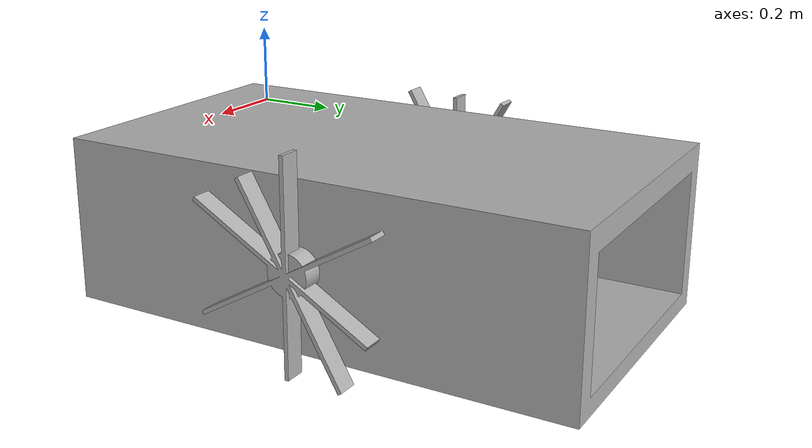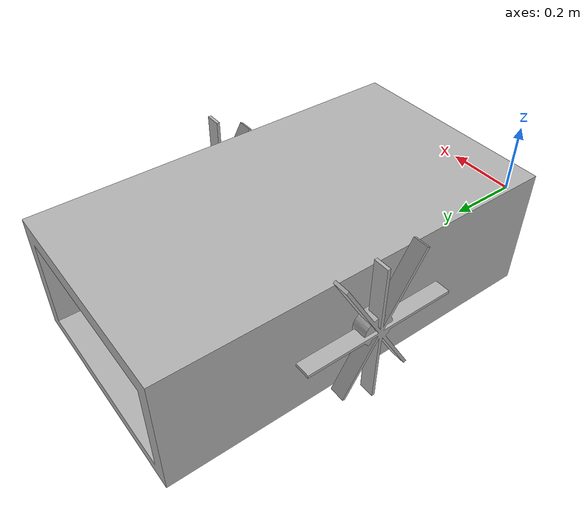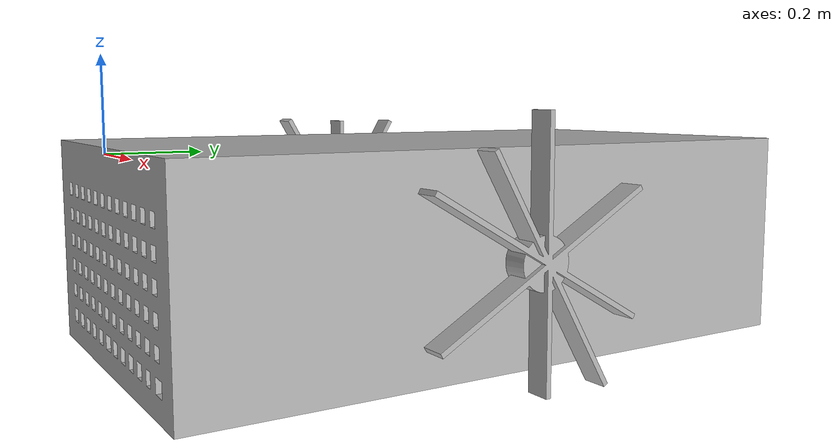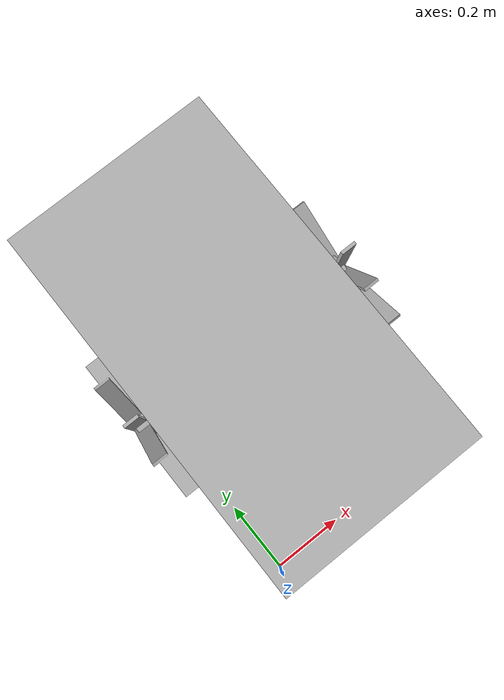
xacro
<?xml version="1.0" ?>
<robot name="mar_gaz" xmlns:xacro="http://www.ros.org/wiki/xacro">

<xacro:include filename="$(find mar_gaz_description)/urdf/materials.xacro" />
<xacro:include filename="$(find mar_gaz_description)/urdf/mar_gaz.trans" />
<xacro:include filename="$(find mar_gaz_description)/urdf/mar_gaz.gazebo" />
<link name="base_link">
  <inertial>
    <origin xyz="0.3129707386364697 0.5188338039965884 -0.15768757544095305" rpy="0 0 0"/>
    <mass value="1079.4328794798214"/>
    <inertia ixx="186.013731" iyy="86.896036" izz="224.575808" ixy="-0.308707" iyz="-0.695055" ixz="0.061475"/>
  </inertial>
  <visual>
    <origin xyz="0 0 0" rpy="0 0 0"/>
    <geometry>
      <mesh filename="package://mar_gaz_description/meshes/base_link.stl" scale="0.001 0.001 0.001"/>
    </geometry>
    <material name="silver"/>
  </visual>
  <collision>
    <origin xyz="0 0 0" rpy="0 0 0"/>
    <geometry>
      <mesh filename="package://mar_gaz_description/meshes/base_link.stl" scale="0.001 0.001 0.001"/>
    </geometry>
  </collision>
</link>

<link name="Paddle_wheel_1">
  <inertial>
    <origin xyz="0.03236204560109679 0.0018852799025214084 -0.0009367968213885858" rpy="0 0 0"/>
    <mass value="9.6357850266041"/>
    <inertia ixx="0.16825" iyy="0.100147" izz="0.072708" ixy="-4.6e-05" iyz="0.015816" ixz="2.4e-05"/>
  </inertial>
  <visual>
    <origin xyz="-0.66 -0.5625 0.17" rpy="0 0 0"/>
    <geometry>
      <mesh filename="package://mar_gaz_description/meshes/Paddle_wheel_1.stl" scale="0.001 0.001 0.001"/>
    </geometry>
    <material name="silver"/>
  </visual>
  <collision>
    <origin xyz="-0.66 -0.5625 0.17" rpy="0 0 0"/>
    <geometry>
      <mesh filename="package://mar_gaz_description/meshes/Paddle_wheel_1.stl" scale="0.001 0.001 0.001"/>
    </geometry>
  </collision>
</link>

<link name="Paddle_wheel_2_1">
  <inertial>
    <origin xyz="-0.03236204560109684 -0.0013299145829284154 0.0016319300835448136" rpy="0 0 0"/>
    <mass value="9.635785026604104"/>
    <inertia ixx="0.16825" iyy="0.107365" izz="0.065491" ixy="-3.2e-05" iyz="9.5e-05" ixz="4.1e-05"/>
  </inertial>
  <visual>
    <origin xyz="0.04 -0.5625 0.17" rpy="0 0 0"/>
    <geometry>
      <mesh filename="package://mar_gaz_description/meshes/Paddle_wheel_2_1.stl" scale="0.001 0.001 0.001"/>
    </geometry>
    <material name="silver"/>
  </visual>
  <collision>
    <origin xyz="0.04 -0.5625 0.17" rpy="0 0 0"/>
    <geometry>
      <mesh filename="package://mar_gaz_description/meshes/Paddle_wheel_2_1.stl" scale="0.001 0.001 0.001"/>
    </geometry>
  </collision>
</link>

<joint name="Revolute_1" type="continuous">
  <origin xyz="0.66 0.5625 -0.17" rpy="0 0 0"/>
  <parent link="base_link"/>
  <child link="Paddle_wheel_1"/>
  <axis xyz="1.0 0.0 0.0"/>
</joint>

<joint name="Revolute_2" type="continuous">
  <origin xyz="-0.04 0.5625 -0.17" rpy="0 0 0"/>
  <parent link="base_link"/>
  <child link="Paddle_wheel_2_1"/>
  <axis xyz="-1.0 0.0 0.0"/>
</joint>

</robot>

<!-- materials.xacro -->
<robot name="mar_gaz" xmlns:xacro="http://www.ros.org/wiki/xacro" >

<material name="silver">
  <color rgba="0.700 0.700 0.700 1.000"/>
</material>

</robot>

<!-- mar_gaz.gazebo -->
<robot name="mar_gaz" xmlns:xacro="http://www.ros.org/wiki/xacro" >

<xacro:property name="body_color" value="Gazebo/Silver" />

<gazebo>
  <plugin name="control" filename="libgazebo_ros_control.so"/>
</gazebo>
<gazebo reference="base_link">
  <material>${body_color}</material>
  <mu1>0.2</mu1>
  <mu2>0.2</mu2>
  <selfCollide>true</selfCollide>
  <gravity>true</gravity>
</gazebo>

<gazebo reference="Paddle_wheel_1">
  <material>${body_color}</material>
  <mu1>0.2</mu1>
  <mu2>0.2</mu2>
  <selfCollide>true</selfCollide>
</gazebo>

<gazebo reference="Paddle_wheel_2_1">
  <material>${body_color}</material>
  <mu1>0.2</mu1>
  <mu2>0.2</mu2>
  <selfCollide>true</selfCollide>
</gazebo>

</robot>
